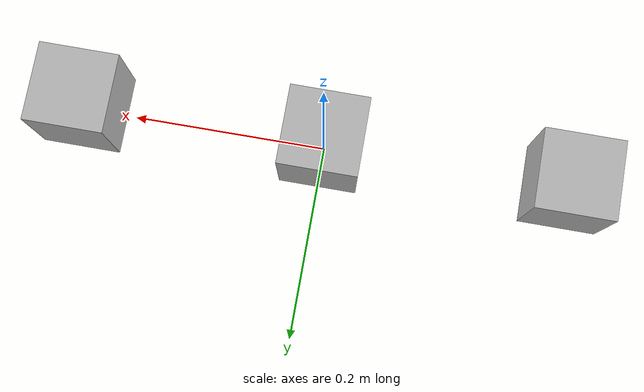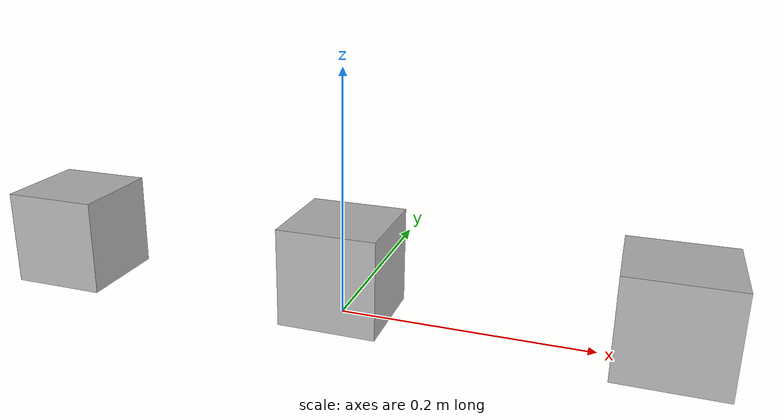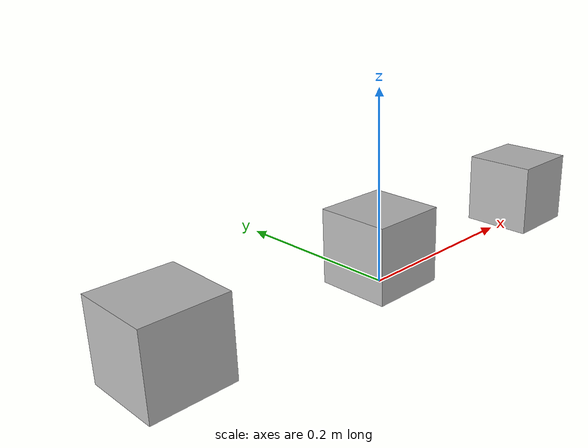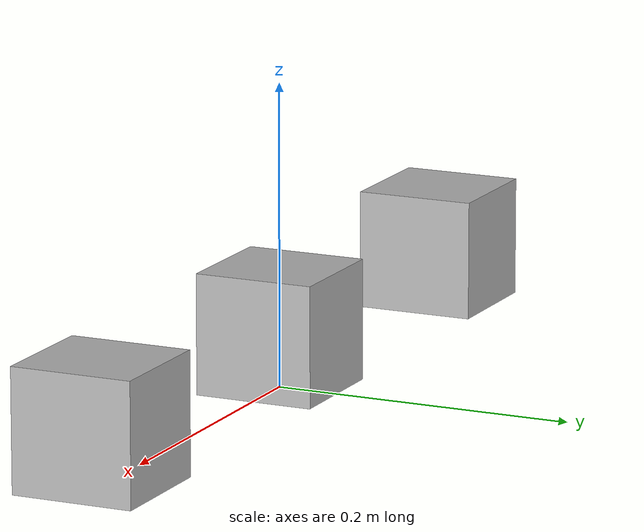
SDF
<?xml version="1.0"?>
<sdf version="1.6">
  <model name="Apple cube">
    <static>false</static>
    <link name="apple">
    <pose>0 0 0.04 0 0 0</pose>
      <collision name="body_collision">
        <geometry>
          <box>
            <size>0.08 0.08 0.08</size>
          </box>
        </geometry>
      </collision>
      <visual name="body_visual">
        <geometry>
          <box>
            <size>0.08 0.08 0.08</size>
          </box>
        </geometry>
      <material>
            <script>
        <uri>model://cubes/materials/scripts</uri>
        <uri>model://cubes/materials/textures</uri>
        <name>RepeatedTexture_apple</name>
            </script>
      </material>
      </visual>
    </link>
    <link name="banana">
      <pose>-0.25 0 0.04 0 0 0</pose>
      <collision name="body_collision">
        <geometry>
          <box>
            <size>0.08 0.08 0.08</size>
          </box>
        </geometry>
      </collision>
      <visual name="body_visual">
        <geometry>
          <box>
            <size>0.08 0.08 0.08</size>
          </box>
        </geometry>
      <material>
            <script>
        <uri>model://cubes/materials/scripts</uri>
        <uri>model://cubes/materials/textures</uri>
        <name>RepeatedTexture_banan</name>
            </script>
      </material>
      </visual>
    </link>
    <link name="pear">
      <pose>0.25 0 0.04 0 0 0</pose>
      <collision name="body_collision">
        <geometry>
          <box>
            <size>0.08 0.08 0.08</size>
          </box>
        </geometry>
      </collision>
      <visual name="body_visual">
        <geometry>
          <box>
            <size>0.08 0.08 0.08</size>
          </box>
        </geometry>
      <material>
            <script>
        <uri>model://cubes/materials/scripts</uri>
        <uri>model://cubes/materials/textures</uri>
        <name>RepeatedTexture_pear</name>
            </script>
      </material>
      </visual>
    </link>
  </model>
</sdf>
